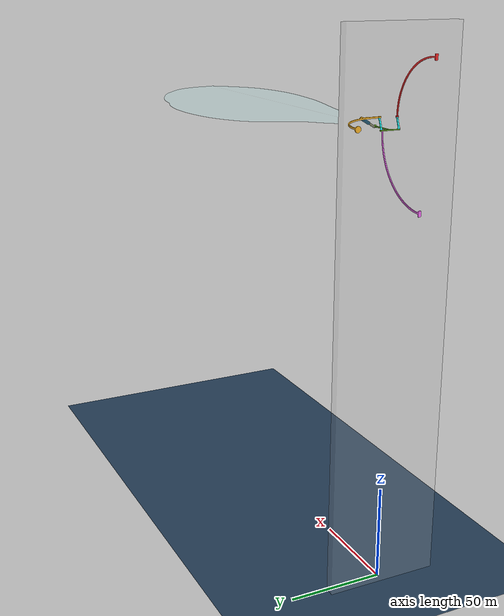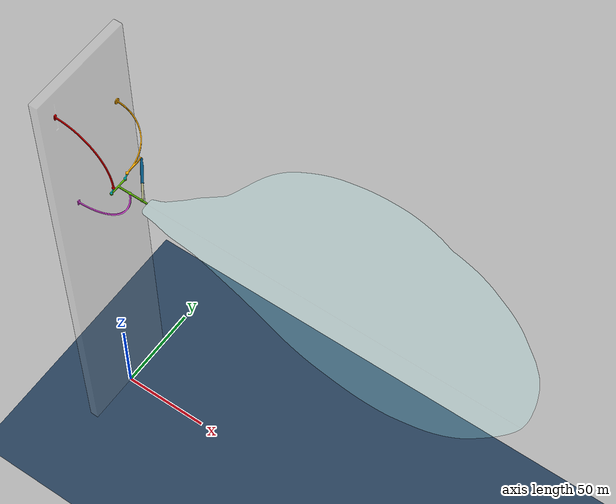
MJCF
<mujoco model="MuJoCo Model">
  <compiler angle="radian" autolimits="true"/>
  <option timestep="0.005"/>
  <default/>
  <asset>
    <texture type="2d" name="grid" builtin="checker" rgb1="0.1 0.2 0.3" rgb2="0.2 0.3 0.4" width="512" height="512"/>
    <material name="color_0" rgba="0 0.33 0.5 1"/>
    <material name="color_1" rgba="1 0.33 1 1"/>
    <material name="color_2" rgba="0 1 1 1"/>
    <material name="color_3" rgba="0.8 0.8 0.8 0.2"/>
    <material name="color_4" rgba="1 0.67 0 1"/>
    <material name="color_5" rgba="1 0 0 1"/>
    <material name="color_6" rgba="0.33 0.67 0 1"/>
    <material name="color_7" rgba="0.67 1 1 0.2"/>
    <material name="color_8" rgba="0.67 0.67 0.5 1"/>
    <material name="grid" texture="grid" texrepeat="10 10" reflectance="0.2"/>
    <mesh name="mount_plate" file="./mesh_files/mount_plate.stl"/>
    <mesh name="sla" file="./mesh_files/sla.stl"/>
    <mesh name="scu" file="./mesh_files/scu.stl"/>
    <mesh name="pwp" file="./mesh_files/pwp.stl"/>
    <mesh name="mu1" file="./mesh_files/mu1.stl"/>
    <mesh name="mu2" file="./mesh_files/mu1.stl"/>
    <mesh name="ax1_and_vein" file="./mesh_files/ax1_and_vein.stl"/>
    <mesh name="wing" file="./mesh_files/wing.stl"/>
    <mesh name="ax3" file="./mesh_files/ax3.stl"/>
    <mesh name="ax4" file="./mesh_files/ax4.stl"/>
  </asset>
  <worldbody>
    <geom name="floor" size="2800 2800 0.05" type="plane" material="grid"/>
    <light name="spotlight" target="mount_plate" pos="368.078 74.9719 420" dir="0 0 -1" cutoff="560" diffuse="0.8 0.8 0.8" specular="0.2 0.2 0.2" mode="targetbodycom"/>
    <body name="mount_plate" pos="0 0 0" gravcomp="0">
      <joint name="mount_plate_joint" type="free"/>
      <geom name="mount_plate_mesh" type="mesh" material="color_3" mesh="mount_plate"/>
      <body name="sla" pos="-0.5 20 233.727" quat="6.31722e-09 0.707107 -0.707107 6.31722e-09" gravcomp="0">
        <joint name="sla_joint" pos="0 0 0" axis="1.24159e-08 -1 0"/>
        <geom name="sla_mesh" pos="0 0 0" type="mesh" material="color_4" mesh="sla"/>
        <body name="mu1_002" pos="30.0052 -29.9982 0.691803" quat="-0.579011 -0.406104 0.405963 -0.578809" gravcomp="0">
          <joint name="mu1_002_joint_axis1" pos="0 0 0" axis="-0.340548 -0.000118488 0.940227"/>
          <joint name="mu1_002_joint_axis2" pos="0 0 0" axis="0.000348085 -1 5.47601e-08"/>
          <geom name="mu1_002_mesh" pos="0 0 0" type="mesh" density="0.001" material="color_2" mesh="mu2"/>
        </body>
        <body name="ax3" pos="20.0013 -30.5655 0.000815333" quat="-0.113056 -0.926969 0.331909 -0.133354" gravcomp="0">
          <joint name="ax3_joint_axis1" pos="0 0 0" axis="0.744106 -0.645492 0.172181"/>
          <joint name="ax3_joint_axis2" pos="0 0 0" axis="0.322279 0.121077 -0.93887"/>
          <geom name="ax3_mesh" pos="0 0 0" type="mesh" density="0.001" material="color_0" mesh="ax3"/>
          <body name="ax4" pos="4.80347 -0.00220862 -0.0011374" quat="1 1.5195e-10 9.29818e-08 -9.9939e-07" gravcomp="0">
            <joint name="ax4_joint" pos="0 0 0" axis="1 1.99878e-06 1.85964e-07" type="slide"/>
            <geom name="ax4_mesh" pos="0 0 0" type="mesh" density="0.001" material="color_8" mesh="ax4"/>
          </body>
        </body>
      </body>
      <body name="scu" pos="-0.5 -20 263.669" quat="0.5 -0.5 0.5 0.5" gravcomp="0">
        <joint name="scu_joint" pos="0 0 0" axis="-1 -7.39295e-09 0" type="slide"/>
        <geom name="scu_mesh" pos="0 0 0" type="mesh" material="color_5" mesh="scu"/>
        <body name="mu1_001" pos="30.635 -29.9994 -0.000216836" quat="0.699594 0.693174 0.122876 0.122391" gravcomp="0">
          <joint name="mu1_001_joint_axis1" pos="0 0 0" axis="-0.341597 -0.00906146 0.939803"/>
          <joint name="mu1_001_joint_axis2" pos="0 0 0" axis="-0.00224963 0.999959 0.00882379"/>
          <geom name="mu1_001_mesh" pos="0 0 0" type="mesh" density="0.001" material="color_2" mesh="mu1"/>
        </body>
      </body>
      <body name="pwp" pos="-0.5 -15.02 191.966" quat="0.5 0.5 -0.5 0.5" gravcomp="0">
        <geom name="pwp_mesh" pos="0 0 0" type="mesh" density="0.001" material="color_1" mesh="pwp"/>
        <body name="ax1_and_vein" pos="34.9995 -35.0031 -0.00587196" quat="0.499914 -0.500101 0.499926 -0.500059" gravcomp="0">
          <joint name="ax1_and_vein_joint_alpha" pos="0 0 0" axis="1 0.000320729 -3.09761e-05"/>
          <joint name="ax1_and_vein_joint_phi" pos="0 0 0" axis="-0.000320727 1 5.39138e-05"/>
          <joint name="ax1_and_vein_joint_theta" pos="0 0 0" axis="3.09934e-05 -5.39039e-05 1"/>
          <geom name="ax1_and_vein_mesh" pos="0 0 0" type="mesh" density="0.001" material="color_6" mesh="ax1_and_vein"/>
          <body name="wing" pos="9.99962 -0.000263238 0.567584" quat="-5.31019e-07 1 -2.30722e-05 -2.83622e-06" gravcomp="0">
            <geom name="wing_mesh" pos="0 0 0" type="mesh" density="0.001" material="color_7" mesh="wing"/>
          </body>
        </body>
      </body>
    </body>
  </worldbody>
  <equality>
    <connect body1="mu1_001" body2="ax1_and_vein" anchor="5.24969 0.000142155 -0.000240209" solimp="1 1 0.001 0.5 2"/>
    <connect body1="mu1_002" body2="ax1_and_vein" anchor="5.24937 -0.0048507 -0.0015326" solimp="1 1 0.001 0.5 2"/>
    <connect body1="ax4" body2="ax1_and_vein" anchor="14.4075 -0.00228853 -0.0011724" solimp="1 1 0.001 0.5 2"/>
  </equality>
  <actuator>
    <general name="sla_position" joint="sla_joint" actdim="0" biastype="affine" gainprm="-2147483648 0 0 0 0 0 0 0 0 0" biasprm="0 -2147483648 0 0 0 0 0 0 0 0"/>
    <general name="sla_velocity" joint="sla_joint" actdim="0" biastype="affine" gainprm="-2147483648 0 0 0 0 0 0 0 0 0" biasprm="0 0 -2147483648 0 0 0 0 0 0 0"/>
    <general name="scu_position" joint="scu_joint" actdim="0" biastype="affine" gainprm="600000000 0 0 0 0 0 0 0 0 0" biasprm="0 -600000000 0 0 0 0 0 0 0 0"/>
    <general name="scu_velocity" joint="scu_joint" actdim="0" biastype="affine" gainprm="100000000 0 0 0 0 0 0 0 0 0" biasprm="0 0 -100000000 0 0 0 0 0 0 0"/>
    <general name="ax4_position" joint="ax4_joint" actdim="0" biastype="affine" gainprm="300000 0 0 0 0 0 0 0 0 0" biasprm="0 -300000 0 0 0 0 0 0 0 0"/>
    <general name="ax4_velocity" joint="ax4_joint" actdim="0" biastype="affine" gainprm="10000 0 0 0 0 0 0 0 0 0" biasprm="0 0 -10000 0 0 0 0 0 0 0"/>
  </actuator>
</mujoco>
